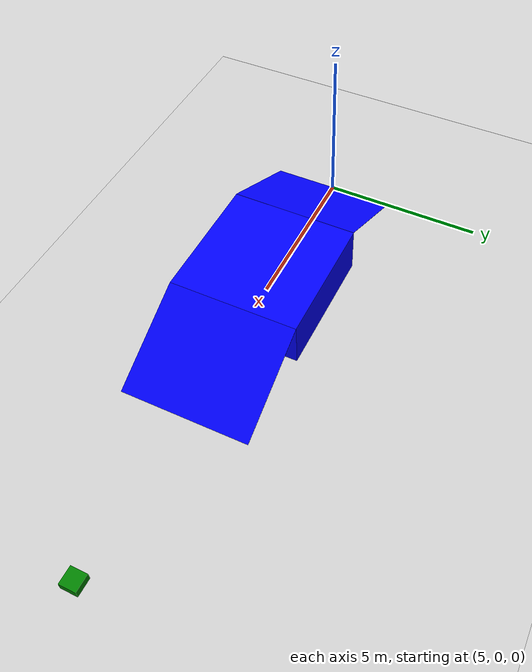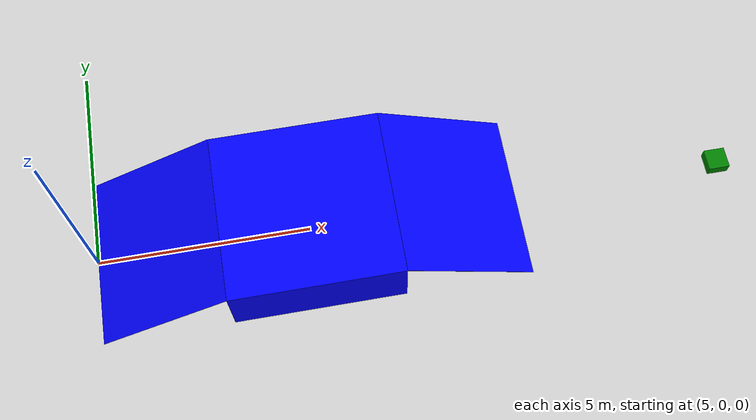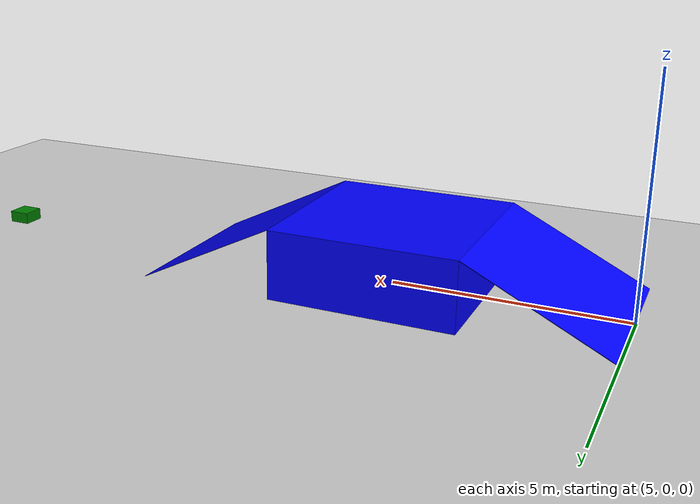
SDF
<?xml version="1.0"?>
<sdf version="1.5">
    <world name="default">
        <!-- A global light source -->
        <include>
            <uri>model://sun</uri>
        </include>

        <!-- Ground plane -->
        <include>
            <uri>model://ground_plane</uri>
        </include>

        <!-- Green cube -->
        <include>
            <uri>model://green_cube</uri>
            <pose>20 0 0 0 0 0</pose>
        </include>

        <!-- Model ramp -->
        <include>
            <uri>model://ramp</uri>
            <pose>10 0 0 0 0 0</pose>
        </include>

    </world>
</sdf>

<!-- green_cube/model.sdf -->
<sdf version="1.6">
  <model name="green_cube">
    <link name="cube_link">

      <inertial>
        <mass>0.3</mass>
        <inertia>
          <ixx>0.1666667</ixx>
          <iyy>0.1666667</iyy>
          <izz>0.1666667</izz>
          <ixy>0.0</ixy>
          <ixz>0.0</ixz>
          <iyz>0.0</iyz>
        </inertia>
      </inertial>

      <collision name="cube_collision">
        <geometry>
          <box>
            <size>0.5 0.5 0.5</size>
          </box>
        </geometry>
      </collision>

      <visual name="cube_visual">
        <geometry>
          <box>
            <size>0.5 0.5 0.5</size>
          </box>
        </geometry>
        <material>
          <ambient>0 0.5 0 1</ambient>
          <diffuse>0 0.5 0 1</diffuse>
          <specular>0.1 0.1 0.1 1</specular>
        </material>
      </visual>

    </link>
  </model>
</sdf>

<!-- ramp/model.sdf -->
<sdf version="1.6">
  <model name="ramp">
    <link name="base_link">
      <pose frame="">0 0 0 0 -0 0</pose>
      <inertial>
        <pose frame="">0 0 0.75 0 -0 0</pose>
        <mass>150</mass>
        <inertia>
          <ixx>0</ixx>
          <ixy>0</ixy>
          <ixz>0</ixz>
          <iyy>1225</iyy>
          <iyz>0</iyz>
          <izz>1225</izz>
        </inertia>
      </inertial>
      <collision name="base_link_collision">
        <pose frame="">0 0 0.75 0 -0 0</pose>
        <geometry>
          <box>
            <size>4 4 1.5</size>
          </box>
        </geometry>
      </collision>
      <collision name="base_link_fixed_joint_lump__childA_collision_1">
        <pose frame="">3.5 0 0.75 0 0.463 0</pose>
        <geometry>
          <box>
            <size>3.3541 4 0.01</size>
          </box>
        </geometry>
      </collision>
      <collision name="base_link_fixed_joint_lump__childB_collision_2">
        <pose frame="">-3.5 0 0.75 0 -0.463 0</pose>
        <geometry>
          <box>
            <size>3.3541 4 0.01</size>
          </box>
        </geometry>
      </collision>
      <visual name="base_link_visual">
        <pose frame="">0 0 0.75 0 -0 0</pose>
        <geometry>
          <box>
            <size>4 4 1.5</size>
          </box>
        </geometry>
        <material>
          <ambient>0 0 1 1</ambient>
          <diffuse>0 0 1 1</diffuse>
          <specular>0.1 0.1 0.1 1</specular>
          <emissive>0 0 0 1</emissive>
        </material>
      </visual>
      <visual name="base_link_fixed_joint_lump__childA_visual_1">
        <pose frame="">3.5 0 0.75 0 0.463 0</pose>
        <geometry>
          <box>
            <size>3.3541 4 0.01</size>
          </box>
        </geometry>
        <material>
          <ambient>0 0 1 1</ambient>
          <diffuse>0 0 1 1</diffuse>
          <specular>0.1 0.1 0.1 1</specular>
          <emissive>0 0 0 1</emissive>
        </material>
      </visual>
      <visual name="base_link_fixed_joint_lump__childB_visual_2">
        <pose frame="">-3.5 0 0.75 0 -0.463 0</pose>
        <geometry>
          <box>
            <size>3.3541 4 0.01</size>
          </box>
        </geometry>
        <material>
          <ambient>0 0 1 1</ambient>
          <diffuse>0 0 1 1</diffuse>
          <specular>0.1 0.1 0.1 1</specular>
          <emissive>0 0 0 1</emissive>
        </material>
      </visual>
    </link>
    <joint name="fixed" type="fixed">
      <child>base_link</child>
      <parent>world</parent>
    </joint>
  </model>
</sdf>
